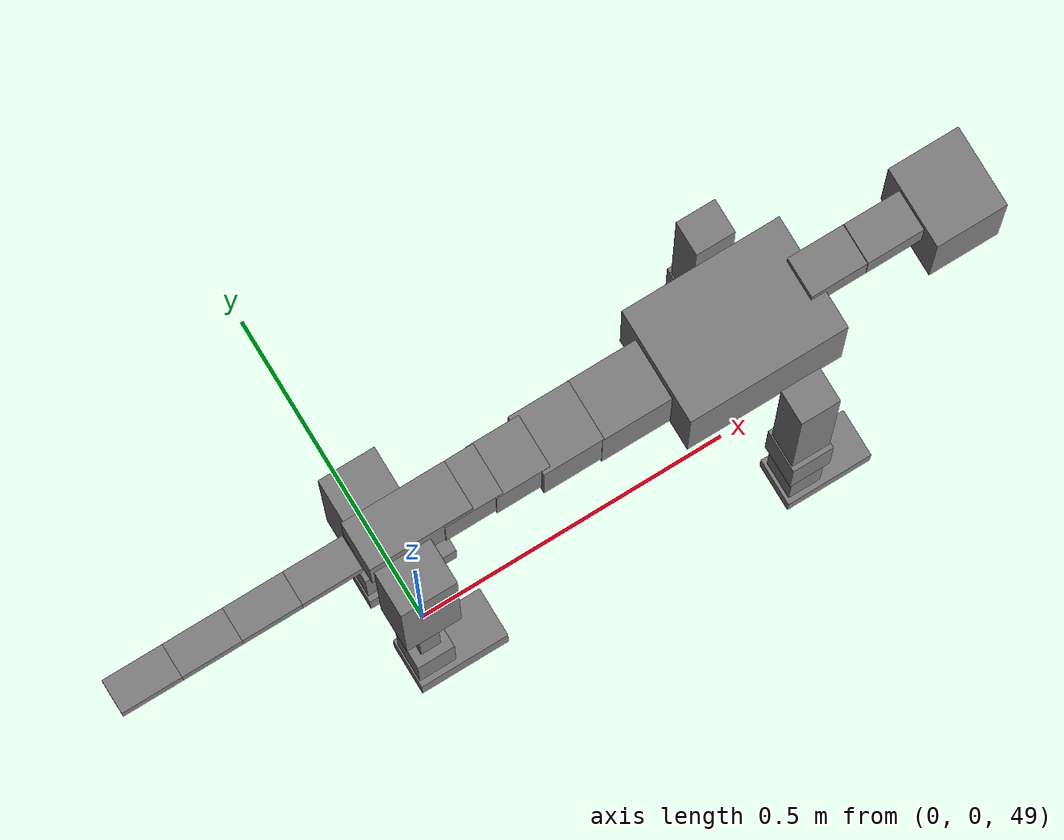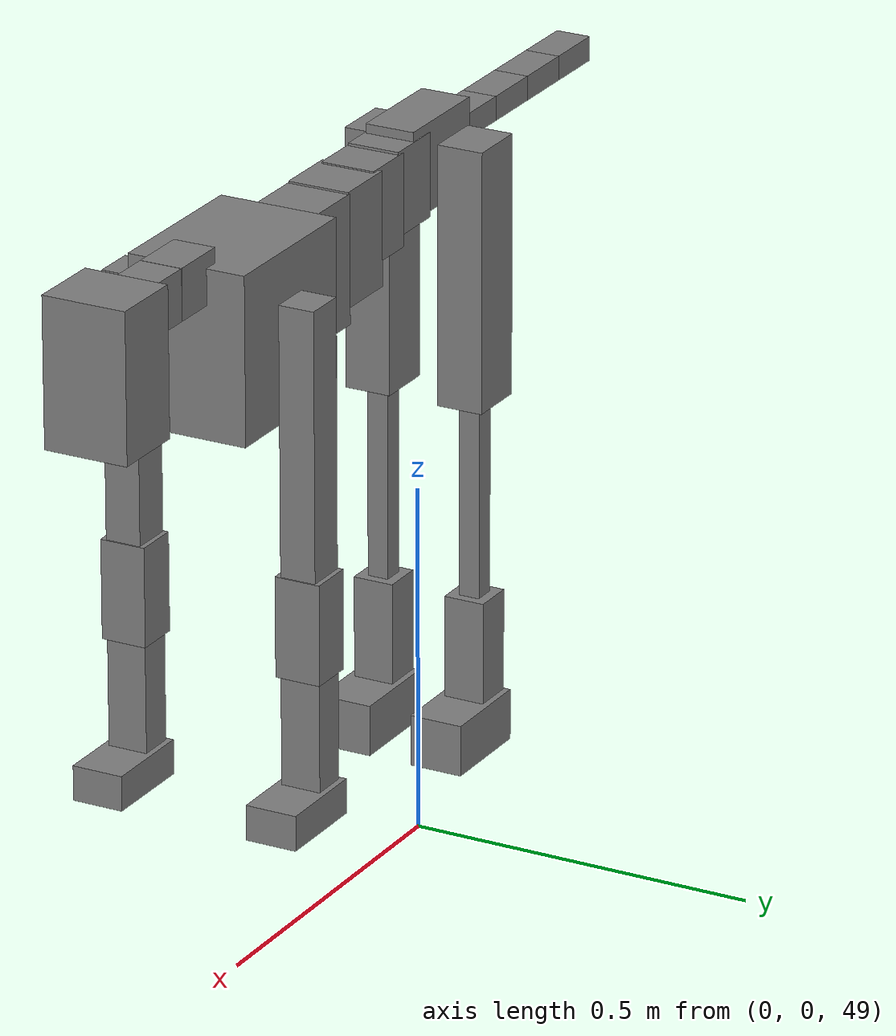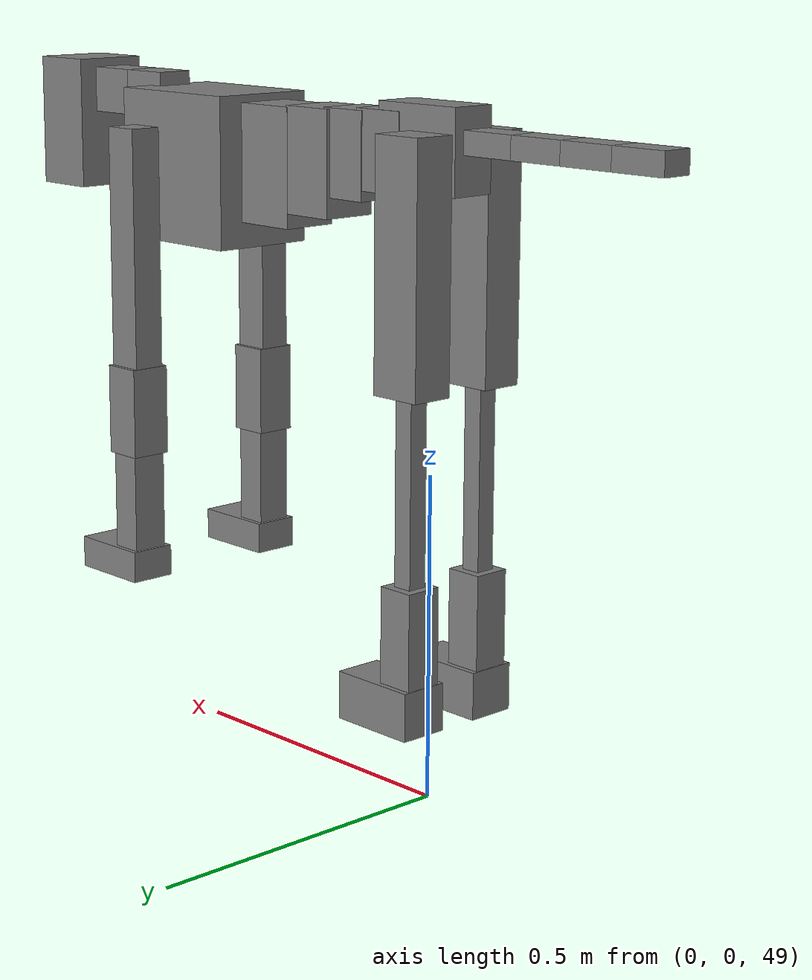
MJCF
<mujoco model="dog">

    <default>
        <joint armature="0.02" stiffness="1" damping="0.2" limited="true"/>
        <geom condim="3" friction="1 0.05 0.05" margin="0.01"/>
        <motor ctrllimited="true" ctrlrange="-1.0 1.0" forcelimited="true" gear="50"/>
    </default>

    <compiler inertiafromgeom="true" angle="radian"/>

    <option timestep="0.016" iterations="50" tolerance="1e-10" solver="Newton" jacobian="dense" cone="pyramidal"/>

    <size nconmax="20000" njmax="60000" nstack="5000000"/>
    <visual>
        <map force="0.1" zfar="30"/>
        <rgba haze="0.15 0.25 0.35 1"/>
        <quality shadowsize="2048"/>
        <global offwidth="800" offheight="800"/>
    </visual>

    <asset>
        <texture type="skybox" builtin="gradient" rgb1="0.3 0.5 0.7" rgb2="0 0 0" width="512" height="512"/>
        <texture name="texplane" type="2d" builtin="checker" rgb1=".2 .3 .4" rgb2=".1 0.15 0.2" width="512" height="512"
                 mark="cross" markrgb=".8 .8 .8"/>
        <texture name="texgeom" type="cube" builtin="flat" mark="cross" width="127" height="1278" rgb1="0.8 0.6 0.4"
                 rgb2="0.8 0.6 0.4" markrgb="1 1 1" random="0.01"/>

        <material name="matplane" reflectance="0.3" texture="texplane" texrepeat="1 1" texuniform="true"/>
        <material name="matgeom" texture="texgeom" texuniform="true" rgba="0.8 0.6 .4 1"/>
    </asset>

    <worldbody>
        <geom name="floor" pos="0 0 0" size="0 0 .25" type="plane" material="matplane" condim="3"/>

        <light directional="false" diffuse=".2 .2 .2" specular="0 0 0" pos="0 0 5" dir="0 0 -1" castshadow="false"/>
        <light mode="targetbodycom" target="torso" directional="false" diffuse=".8 .8 .8" specular="0.3 0.3 0.3"
               pos="0 0 4.0" dir="0 0 -1"/>

        <body name="root" pos="0 0 50">
            <freejoint name="root_1"/>
            <geom type="box" pos="0 0 -0.02" size="0.0774  0.0358  0.063" density="2030"/>

            <body name="spine1" pos="0.054 0 0">
                <joint name="spine1_y" axis="0 1 0" range="0 0.7" limited="true"/>
                <geom type="box" pos="0.02375 0 -0.03" size="0.04375  0.0375  0.05985" density="2030"/>

                <body name="spine2" pos="0.0612 0 0">
                    <joint name="spine2_y" axis="0 1 0" range="-0.15 0.15" limited="true"/>
                    <geom type="box" pos="0.03555  0  -0.04" size="0.04055  0.039  0.06615" density="2030"/>

                    <body name="spine3" pos="0.0730 0 0">
                        <joint name="spine3_y" axis="0 1 0" range="-0.15 0.15" limited="true"/>
                        <geom type="box" pos="0.03555  0  -0.057" size="0.04555  0.0445  0.081" density="2030"/>

                        <body name="spine4" pos="0.0780 0 0">
                            <joint name="spine4_y" axis="0 1 0" range="-0.15 0.15" limited="true"/>
                            <geom type="box" pos="0.05265  0  -0.07" size="0.05265  0.045  0.09135" density="2030"/>

                            <body name="torso" pos="0.1082 0 0">
                                <joint name="torso_y" axis="0 1 0" range="-0.15 0.15" limited="true"/>
                                <geom type="box" pos="0.11925  0  -0.085" size="0.11925  0.085  0.11745"
                                      density="2030"/>

                                <body name="neck1" pos="0.2160  0   0.0180">
                                    <joint name="neck1_y" axis="0 1 0" range="-1.2  -1" limited="true"/>
                                    <geom type="box" pos="0.0423  0  0" size="0.0423  0.03  0.036" density="2325"/>

                                    <body name="neck2" pos="0.0853  0  0">
                                        <joint name="neck2_y" axis="0 1 0" range="0.1  0" limited="true"/>
                                        <geom type="box" pos="0.0423  0  0" size="0.0423  0.03  0.036" density="2325"/>

                                        <body name="head" pos="0.0853  0  0">
                                            <joint name="head_y" axis="0 1 0" range="-0.3  -0.2" limited="true"/>
                                            <geom type="box" pos="0.0531  0  -0.055" size="0.0531  0.06  0.1044"
                                                  density="4030"/>

                                        </body>
                                    </body>
                                </body>

                                <body name="front_shoulder" pos="0.156  0   -0.0480">
                                    <joint name="front_shoulder_y" axis="0 1 0" range="-1 1.5" limited="true"/>
                                    <geom type="box" pos="0 0.13 -0.1745" size="0.0297  0.0254  0.2012" density="1158"/>
                                    <geom type="box" pos="0 -0.13 -0.1745" size="0.0297  0.0254  0.2012"
                                          density="1158"/>

                                    <body name="front_elbow" pos="0  0  -0.3491">
                                        <joint name="front_elbow_y" axis="0 1 0" range="-2 0" limited="true"/>
                                        <geom type="box" pos="0 0.13 -0.0705" size="0.0318  0.0325  0.0705"
                                              density="1081"/>
                                        <geom type="box" pos="0 -0.13 -0.0705" size="0.0318  0.0325  0.0705"
                                              density="1081"/>

                                        <body name="front_wrist" pos="0  0  -0.1410">
                                            <joint name="front_wrist_y" axis="0 1 0" range="-0.2 0" limited="true"/>
                                            <geom type="box" pos="0 0.13 -0.0846" size="0.0255  0.0284  0.0977"
                                                  density="1664"/>
                                            <geom type="box" pos="0 -0.13 -0.0846" size="0.0255  0.0284  0.0977"
                                                  density="1664"/>

                                            <body name="front_finger_end" pos="0  0  -0.1691">
                                                <joint name="front_finger_y" axis="0 1 0" range="-0.4 1"
                                                       limited="true"/>
                                                <geom type="box" pos="0.0367  0.13  -0.0098"
                                                      size="0.0674  0.0367  0.0248" density="1515"/>
                                                <geom type="box" pos="0.0367  -0.13  -0.0098"
                                                      size="0.0674  0.0367  0.0248" density="1515"/>

                                            </body>

                                        </body>
                                    </body>
                                </body>

                            </body>
                        </body>
                    </body>
                </body>
            </body>

            <body name="back_hip" pos="-0.03 0 -0.018">
                <joint name="back_hip_y" axis="0 1 0" range="-1.5 0.3" limited="true"/>
                <geom type="box" pos="0 0.07 -0.1633" size="0.0425  0.0334  0.1861" density="1154"/>
                <geom type="box" pos="0 -0.07 -0.1633" size="0.0425  0.0334  0.1861" density="1154"/>

                <body name="back_knee" pos="0  0  -0.3266">
                    <joint name="back_knee_y" axis="0 1 0" range="0 2.8" limited="true"/>
                    <geom type="box" pos="0 0.07 -0.1578" size="0.0157  0.0154  0.1733" density="1227"/>
                    <geom type="box" pos="0 -0.07 -0.1578" size="0.0157  0.0154  0.1733" density="1227"/>

                    <body name="back_ankle" pos="0  0  -0.3156">
                        <joint name="back_ankle_y" axis="0 1 0" range="-2.2 0" limited="true"/>
                        <geom type="box" pos="0 0.07 -0.0754" size="0.0295  0.0295  0.0867" density="1284"/>
                        <geom type="box" pos="0 -0.07 -0.0754" size="0.0295  0.0295  0.0867" density="1284"/>

                        <body name="back_toe_end" pos="0  0  -0.1508">
                            <joint name="back_toe_y" axis="0 1 0" range="-0.4 1" limited="true"/>
                            <geom type="box" pos="0.0385  0.07  -0.0217" size="0.0706  0.0385  0.0367" density="1515"/>
                            <geom type="box" pos="0.0385  -0.07  -0.0217" size="0.0706  0.0385  0.0367" density="1515"/>

                        </body>
                    </body>
                </body>
            </body>

            <body name="tail1" pos="-0.074 0 -0.006">
                <joint name="tail1_y" axis="0 1 0" range="-0.2 0.2" limited="true"/>
                <geom type="box" pos="-0.0536  0  0" size="0.045  0.025  0.0175" density="1587"/>

                <body name="tail2" pos="-0.09 0 0">
                    <joint name="tail2_y" axis="0 1 0" range="-0.2 0.2" limited="true"/>
                    <geom type="box" pos="-0.0536  0  0" size="0.045  0.025  0.0175" density="1587"/>

                    <body name="tail3" pos="-0.09 0 0">
                        <joint name="tail3_y" axis="0 1 0" range="-0.2 0.2" limited="true"/>
                        <geom type="box" pos="-0.0536  0  0" size="0.045  0.025  0.0175" density="1587"/>

                        <body name="tail4" pos="-0.09 0 0">
                            <joint name="tail4_y" axis="0 1 0" range="-0.2 0.2" limited="true"/>
                            <geom type="box" pos="-0.0536  0  0" size="0.045  0.025  0.0175" density="1587"/>

                        </body>
                    </body>
                </body>
            </body>
        </body>
    </worldbody>

    <actuator>
        <motor joint="spine1_y" forcerange="-150 150     "/>
        <motor joint="spine2_y" forcerange="-150 150     "/>
        <motor joint="spine3_y" forcerange="-150 150     "/>
        <motor joint="spine4_y" forcerange="-150 150     "/>
        <motor joint="torso_y" forcerange="-150 150     "/>
        <motor joint="neck1_y" forcerange="-100 100       "/>
        <motor joint="neck2_y" forcerange="-100 100       "/>
        <motor joint="head_y" forcerange="-150 150       "/>
        <motor joint="front_shoulder_y" forcerange="-134.01 135.13"/>
        <motor joint="front_elbow_y" forcerange="-172.63 163.74"/>
        <motor joint="front_wrist_y" forcerange="-135.03 91.97"/>
        <motor joint="front_finger_y" forcerange="-58.93 96.99"/>
        <motor joint="back_hip_y" forcerange="-261.65 383.17"/>
        <motor joint="back_knee_y" forcerange="-201.43 223.03"/>
        <motor joint="back_angle_y" forcerange="-209.55 162.27"/>
        <motor joint="back_toe_y" forcerange="-118.06 110.15"/>
        <motor joint="tail1_y" forcerange="-50 50     "/>
        <motor joint="tail2_y" forcerange="-50 50     "/>
        <motor joint="tail3_y" forcerange="-50 50     "/>
        <motor joint="tail4_y" forcerange="-50 50     "/>
    </actuator>
</mujoco>
